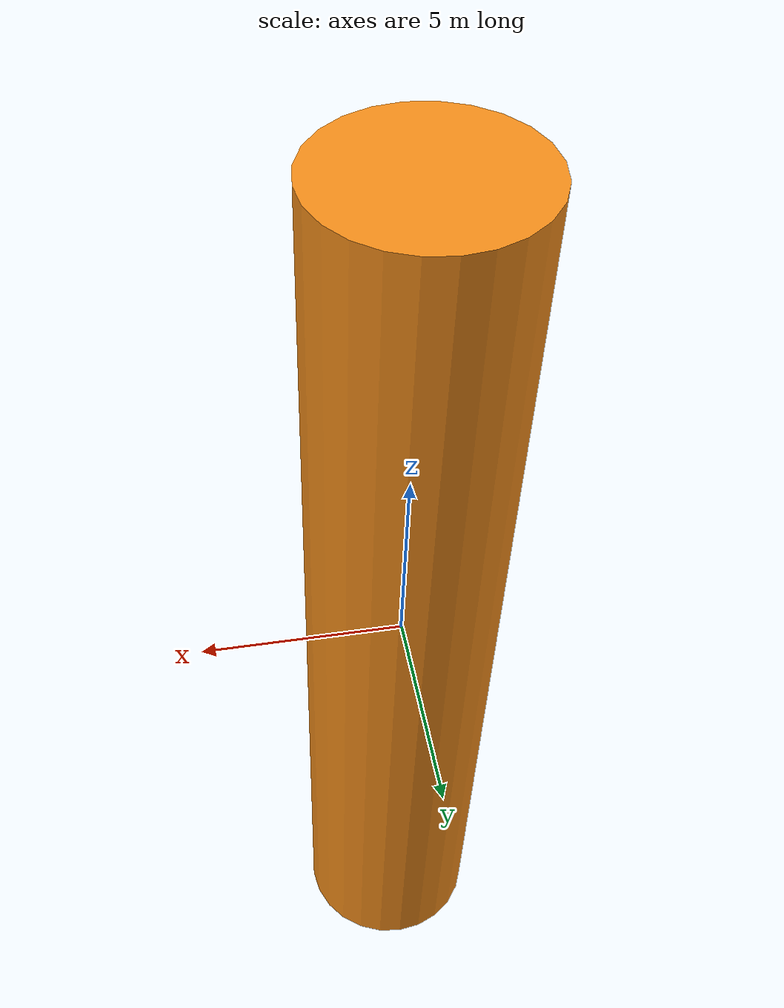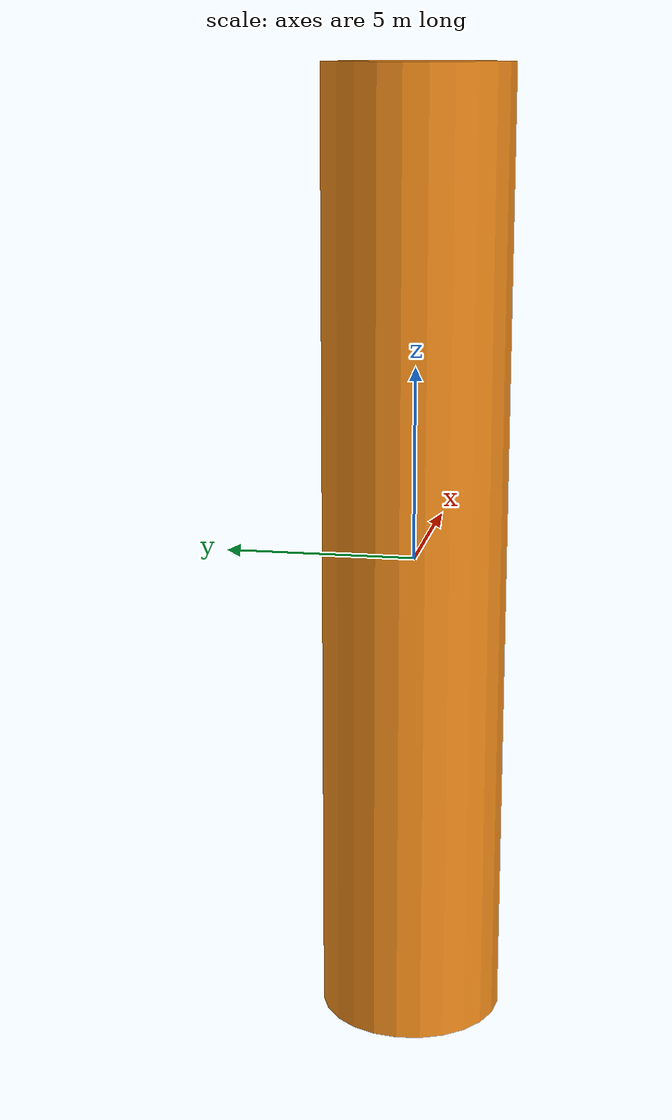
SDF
<?xml version="1.0" ?>
<sdf version="1.5">
  <model name="obstacle_1">
    <static>false</static>
    <link name="link">
      <pose>0 0 0 0 0 0</pose>
      <collision name="collision">
        <geometry>
          <cylinder>
              <radius>2.4</radius>
              <length>25.0</length>
          </cylinder>
        </geometry>
      </collision>
      <visual name="visual">
        <geometry>
          <cylinder>
              <radius>2.4</radius>
              <length>25.0</length>
          </cylinder>
        </geometry>
	      <material>
            <script>
              <uri>file://media/materials/scripts/gazebo.material</uri>
              <name>Gazebo/Orange</name>
            </script>
        </material>
      </visual>
    </link>
  </model>
</sdf>
